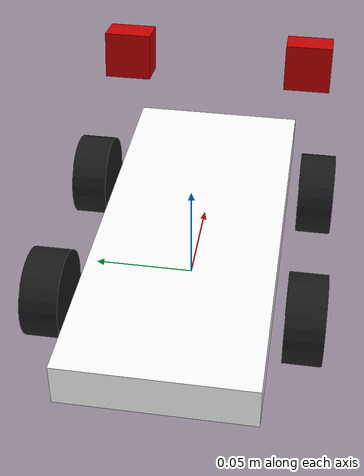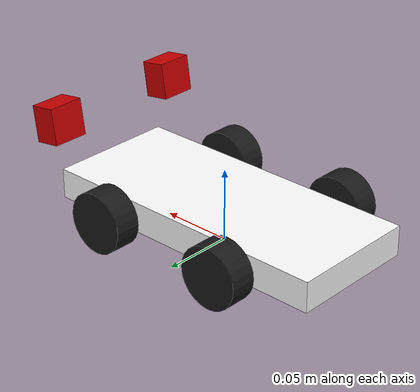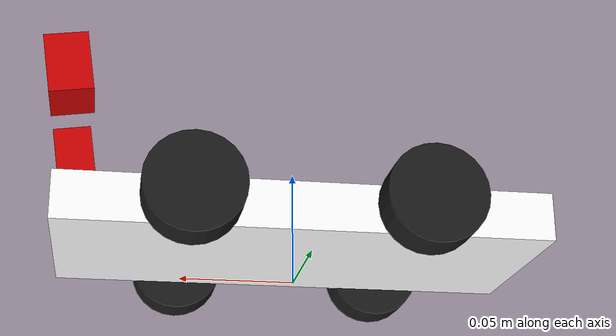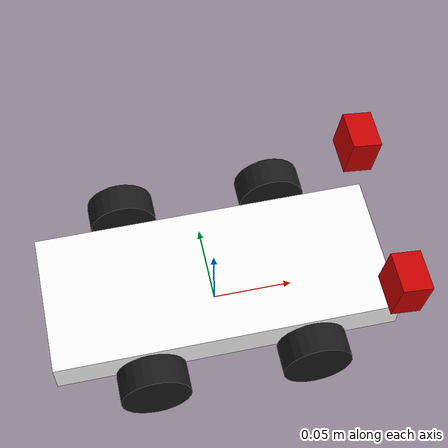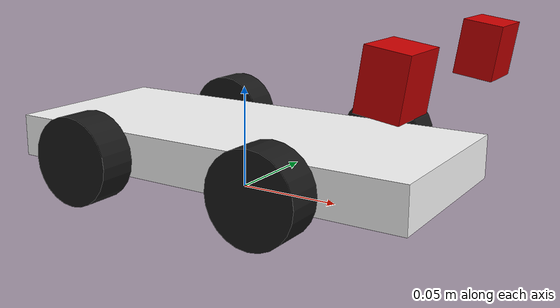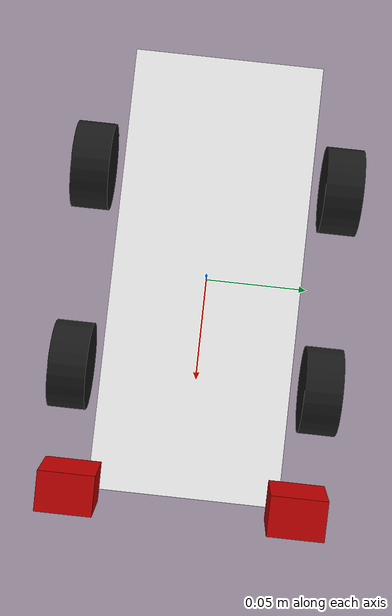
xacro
<?xml version="1.0"?>
<robot name="n20_sg90_robot" xmlns:xacro="http://www.ros.org/wiki/xacro">

  <!-- 1. 物理参数定义 -->
  <!-- 轮子半径（米） -->
  <xacro:property name="wheel_radius" value="0.021"/>
  <!-- 轮子宽度 -->
  <xacro:property name="wheel_width" value="0.018"/>
  <!-- 前后轮轴距 -->
  <xacro:property name="wheel_base" value="0.097"/>
  <!-- 左右轮距 -->
  <xacro:property name="track_width" value="0.12"/>
  <!-- 车体质量 -->
  <xacro:property name="body_mass" value="0.8"/>

  <!-- 2. 材质定义 -->
  <material name="n20_sg90_robot_white"><color rgba="1 1 1 1"/></material>
  <material name="n20_sg90_robot_black"><color rgba="0.1 0.1 0.1 1"/></material>
  <material name="n20_sg90_robot_red"><color rgba="0.8 0 0 1"/></material>

  <!-- 3. Base Frame -->

  <!-- ROS 语义用地面投影点（Nav2/TF 标准） -->
  <link name="base_footprint"/>

  <!-- base_footprint → base_link -->
  <joint name="base_joint" type="fixed">
    <parent link="base_footprint"/>
    <child link="base_link"/>
    <!-- base_link 抬高一个轮子半径 -->
    <origin xyz="0 0 0.021" rpy="0 0 0"/>
  </joint>

  <!-- 4. 车体主体 -->
  <link name="base_link">
    <visual>
      <geometry><box size="0.21 0.09 0.021"/></geometry>
      <material name="n20_sg90_robot_white"/>
    </visual>
    <collision>
      <geometry><box size="0.21 0.09 0.021"/></geometry>
    </collision>
    <inertial>
      <mass value="${body_mass}"/>
      <!-- 简化惯性矩阵（合理即可） -->
      <inertia ixx="0.001" ixy="0" ixz="0"
               iyy="0.003" iyz="0"
               izz="0.003"/>
    </inertial>
  </link>

  <!-- 5. 后轮（驱动轮） -->
  <xacro:macro name="rear_wheel" params="suffix y_reflect">
    <link name="rear_${suffix}_wheel">
      <visual>
        <!-- cylinder 默认轴向是 Z，这里旋转到 Y -->
        <origin rpy="${pi/2} 0 0"/>
        <geometry>
          <cylinder radius="${wheel_radius}" length="${wheel_width}"/>
        </geometry>
        <material name="n20_sg90_robot_black"/>
      </visual>
      <inertial>
        <mass value="0.05"/>
        <inertia ixx="0.0001" ixy="0" ixz="0"
                 iyy="0.0001" iyz="0"
                 izz="0.0001"/>
      </inertial>
      <!-- 碰撞 -->
      <collision>
        <origin rpy="${pi/2} 0 0"/>
        <geometry>
          <cylinder radius="${wheel_radius}" length="${wheel_width}"/>
        </geometry>
      </collision>
    </link>

    <!-- 后轮连续旋转（驱动） -->
    <joint name="rear_${suffix}_wheel_joint" type="continuous">
      <parent link="base_link"/>
      <child link="rear_${suffix}_wheel"/>
      <origin xyz="-${wheel_base/2} ${y_reflect * track_width/2} 0"/>
      <!-- 绕 Y 轴转动 -->
      <axis xyz="0 1 0"/>
    </joint>
  </xacro:macro>

  <!-- 6. 前轮（转向 + 旋转） -->
  <xacro:macro name="front_wheel" params="suffix y_reflect">
     <!-- 转向关节中间 link（Ackermann 必须） -->
    <link name="front_${suffix}_steer_link">
      <inertial>
        <mass value="0.02"/>
        <inertia ixx="0.00001" ixy="0" ixz="0"
                 iyy="0.00001" iyz="0"
                 izz="0.00001"/>
      </inertial>
    </link>
     <!-- 转向关节 -->
    <joint name="front_${suffix}_steer_joint" type="revolute">
      <parent link="base_link"/>
      <child link="front_${suffix}_steer_link"/>
      <origin xyz="${wheel_base/2} ${y_reflect * track_width/2} 0"/>
      <axis xyz="0 0 1"/>
      <limit lower="-0.52" upper="0.52" effort="1.0" velocity="2.0"/>
    </joint>
    <!-- 实际轮子 -->
    <link name="front_${suffix}_wheel">
      <visual>
        <origin rpy="${pi/2} 0 0"/>
        <geometry>
          <cylinder radius="${wheel_radius}" length="${wheel_width}"/>
        </geometry>
        <material name="n20_sg90_robot_black"/>
      </visual>
      <collision>
        <origin rpy="${pi/2} 0 0"/>
        <geometry>
          <cylinder radius="${wheel_radius}" length="${wheel_width}"/>
        </geometry>
      </collision>
      <inertial>
        <mass value="0.05"/>
        <inertia ixx="0.0001" ixy="0" ixz="0"
                 iyy="0.0001" iyz="0"
                 izz="0.0001"/>
      </inertial>
    </link>
    <!-- 轮子旋转 -->
    <joint name="front_${suffix}_wheel_joint" type="continuous">
      <parent link="front_${suffix}_steer_link"/>
      <child link="front_${suffix}_wheel"/>
      <origin xyz="0 0 0" rpy="0 0 0"/>
      <axis xyz="0 1 0"/>
      <dynamics damping="0.1" friction="0.1"/>
    </joint>
  </xacro:macro>

  <!-- 实例化四个轮子 -->
  <xacro:rear_wheel  suffix="left"  y_reflect="1"/>
  <xacro:rear_wheel  suffix="right" y_reflect="-1"/>
  <xacro:front_wheel suffix="left"  y_reflect="1"/>
  <xacro:front_wheel suffix="right" y_reflect="-1"/>

  <!-- 7. IMU -->
  <link name="imu_link"/>
  <joint name="imu_joint" type="fixed">
    <parent link="base_link"/>
    <child link="imu_link"/>
    <origin xyz="0 0 0.03"/>
  </joint>

  <!-- 8. Camera -->
<link name="camera_link">
  <inertial>
    <mass value="0.01"/>
    <inertia ixx="1e-5" ixy="0" ixz="0" iyy="1e-5" iyz="0" izz="1e-5"/>
  </inertial>
</link>

<joint name="camera_base_joint" type="fixed">
  <parent link="base_link"/>
  <child link="camera_link"/>
  <origin xyz="0.1 0 0.05" rpy="0 0.1484 0"/>
</joint>

  <link name="stereo_left_camera_link">
    <visual>
      <geometry><box size="0.018 0.025 0.025"/></geometry>
      <material name="n20_sg90_robot_red"/>
    </visual>
    <collision>
      <geometry><box size="0.018 0.025 0.025"/></geometry>
    </collision>
    <inertial>
      <mass value="0.01"/>
      <inertia ixx="1e-6" ixy="0" ixz="0" iyy="1e-6" iyz="0" izz="1e-6"/>
    </inertial>
  </link>

  <joint name="stereo_left_camera_joint" type="fixed">
    <parent link="camera_link"/> <child link="stereo_left_camera_link"/>
    <origin xyz="0 0.05 0" rpy="0 0 0"/>
  </joint>

  <link name="stereo_left_camera_optical"/>
  <joint name="stereo_left_camera_optical_joint" type="fixed">
    <parent link="stereo_left_camera_link"/>
    <child link="stereo_left_camera_optical"/>
    <origin rpy="${-pi/2} 0 ${-pi/2}"/>
  </joint>

  <link name="stereo_right_camera_link">
    <visual>
      <geometry><box size="0.018 0.025 0.025"/></geometry>
      <material name="n20_sg90_robot_red"/>
    </visual>
    <collision>
      <geometry><box size="0.018 0.025 0.025"/></geometry>
    </collision>
    <inertial>
      <mass value="0.01"/>
      <inertia ixx="1e-6" ixy="0" ixz="0" iyy="1e-6" iyz="0" izz="1e-6"/>
    </inertial>
  </link>

  <joint name="stereo_right_camera_joint" type="fixed">
    <parent link="camera_link"/> <child link="stereo_right_camera_link"/>
    <origin xyz="0 -0.05 0" rpy="0 0 0"/>
  </joint>

  <link name="stereo_right_camera_optical"/>
  <joint name="stereo_right_camera_optical_joint" type="fixed">
    <parent link="stereo_right_camera_link"/>
    <child link="stereo_right_camera_optical"/>
    <origin rpy="${-pi/2} 0 ${-pi/2}"/>
  </joint>

  <!-- 9. Gazebo 插件 -->
  <gazebo>

    <!-- Ackermann 转向系统 -->
    <plugin filename="gz-sim-ackermann-steering-system"
            name="gz::sim::systems::AckermannSteering">
      <left_joint>front_left_wheel_joint</left_joint>
      <right_joint>front_right_wheel_joint</right_joint>
      <left_steering_joint>front_left_steer_joint</left_steering_joint>
      <right_steering_joint>front_right_steer_joint</right_steering_joint>
      <rear_left_joint>rear_left_wheel_joint</rear_left_joint>
      <rear_right_joint>rear_right_wheel_joint</rear_right_joint>
      <wheel_separation>${track_width}</wheel_separation>
      <wheel_radius>${wheel_radius}</wheel_radius>
      <kingpin_width>${track_width}</kingpin_width>
      <steering_limit>0.52</steering_limit>
      <topic>/cmd_vel</topic>
      <odom_topic>/wheel_odom</odom_topic>
      <frame_id>odom</frame_id>
      <child_frame_id>base_footprint</child_frame_id>
      <publish_odom_tf>false</publish_odom_tf>
    </plugin>

    <!-- IMU & 传感器系统 -->
    <plugin filename="gz-sim-imu-system" name="gz::sim::systems::Imu"/>

    <plugin filename="gz-sim-joint-state-publisher-system"
        name="gz::sim::systems::JointStatePublisher">
        <topic>/joint_states</topic>
        <joint_name>front_left_steer_joint</joint_name>
        <joint_name>front_right_steer_joint</joint_name>
        <joint_name>rear_left_wheel_joint</joint_name>
        <joint_name>rear_right_wheel_joint</joint_name>
    </plugin>
  </gazebo>

  <!-- 10. Gazebo IMU 传感器 -->
  <gazebo reference="imu_link">
    <sensor name="icm20948" type="imu">
      <always_on>1</always_on>
      <update_rate>100</update_rate>
      <visualize>true</visualize>
      <topic>/imu/data_raw</topic>
      <gz_frame_id>imu_link</gz_frame_id>
      <imu>
        <angular_velocity>
          <x><noise type="gaussian"><mean>0.0</mean><stddev>2e-4</stddev></noise></x>
          <y><noise type="gaussian"><mean>0.0</mean><stddev>2e-4</stddev></noise></y>
          <z><noise type="gaussian"><mean>0.0</mean><stddev>2e-4</stddev></noise></z>
        </angular_velocity>
        <linear_acceleration>
          <x><noise type="gaussian"><mean>0.0</mean><stddev>1.7e-2</stddev></noise></x>
          <y><noise type="gaussian"><mean>0.0</mean><stddev>1.7e-2</stddev></noise></y>
          <z><noise type="gaussian"><mean>0.0</mean><stddev>1.7e-2</stddev></noise></z>
        </linear_acceleration>
      </imu>
    </sensor>
  </gazebo>

  <!-- 11. Gazebo Camera -->
<gazebo reference="stereo_left_camera_link">
  <sensor name="stereo_left" type="camera">
    <always_on>1</always_on>
    <update_rate>20</update_rate>
    <visualize>true</visualize>
    <topic>/camera/image_raw</topic>
    <gz_frame_id>stereo_left_camera_optical</gz_frame_id>
    <camera>
      <horizontal_fov>1.536</horizontal_fov>
      <image>
        <width>1640</width>
        <height>1232</height>
        <format>R8G8B8</format>
      </image>
        <clip>
          <near>0.01</near>
          <far>50</far>
        </clip>
       <lens>
        <intrinsics>
          <fx>849.13</fx>
          <fy>841.08</fy>
          <cx>814.55</cx>
          <cy>616.51</cy>
          <s>0</s>
        </intrinsics>
      </lens>
    </camera>
  </sensor>
</gazebo>

<!-- Right Camera -->
<gazebo reference="stereo_right_camera_link">
  <sensor name="stereo_right" type="camera">
    <always_on>1</always_on>
    <update_rate>20</update_rate>
    <visualize>true</visualize>
    <topic>/camera/right/image_raw</topic>
    <gz_frame_id>stereo_right_camera_optical</gz_frame_id>
    <camera>
      <horizontal_fov>1.536</horizontal_fov>
      <image>
        <width>1640</width>
        <height>1232</height>
        <format>R8G8B8</format>
      </image>
        <clip>
          <near>0.01</near>
          <far>50</far>
        </clip>
      <lens>
        <intrinsics>
          <fx>849.13</fx>
          <fy>841.08</fy>
          <cx>814.55</cx>
          <cy>616.51</cy>
          <s>0</s>
        </intrinsics>
      </lens>
    </camera>
  </sensor>
</gazebo>

  <!-- 轮子摩擦力 -->
  <gazebo reference="front_left_wheel">
    <mu1>1.0</mu1><mu2>1.0</mu2><kp>1000000.0</kp><kd>1.0</kd>
  </gazebo>
  <gazebo reference="front_right_wheel">
    <mu1>1.0</mu1><mu2>1.0</mu2><kp>1000000.0</kp><kd>1.0</kd>
  </gazebo>
  <gazebo reference="rear_left_wheel">
    <mu1>1.0</mu1><mu2>1.0</mu2><kp>1000000.0</kp><kd>1.0</kd>
  </gazebo>
  <gazebo reference="rear_right_wheel">
    <mu1>1.0</mu1><mu2>1.0</mu2><kp>1000000.0</kp><kd>1.0</kd>
  </gazebo>

</robot>
